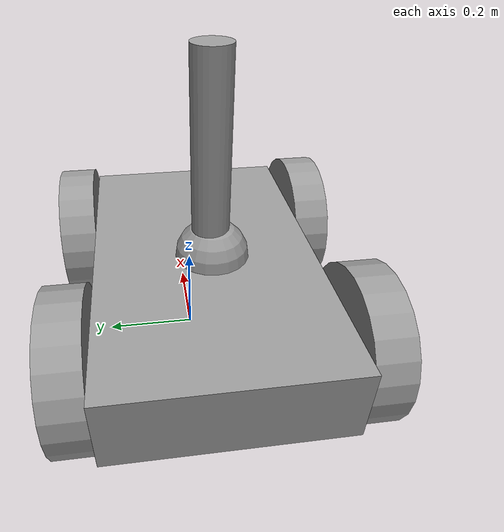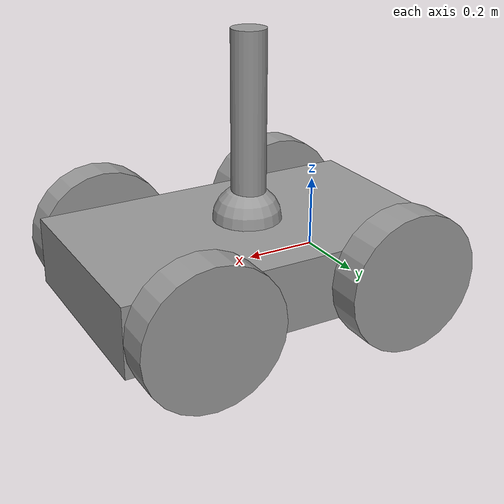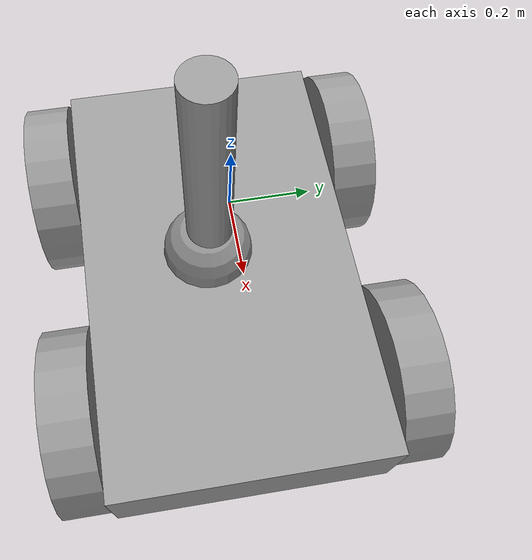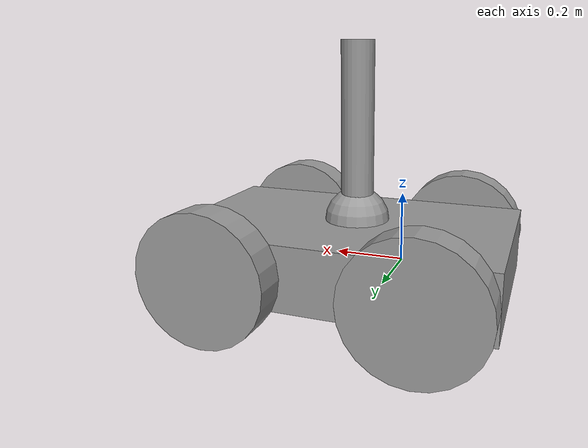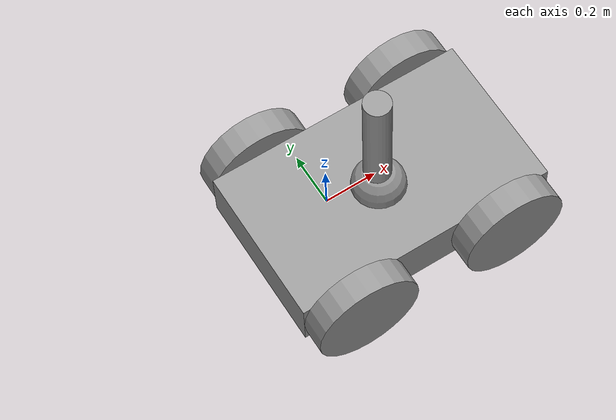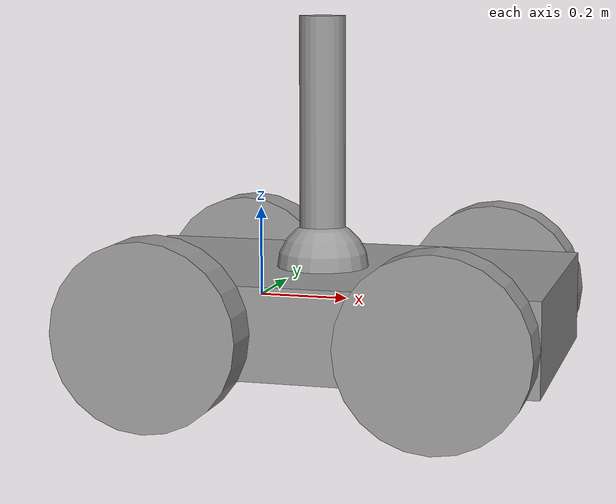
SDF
<?xml version='1.0'?>
<sdf version='1.7'>
  <model name='Robot'>
    <link name='link_0'>
      <inertial>
        <mass>1</mass>
        <inertia>
          <ixx>0.166667</ixx>
          <ixy>0</ixy>
          <ixz>0</ixz>
          <iyy>0.166667</iyy>
          <iyz>0</iyz>
          <izz>0.166667</izz>
        </inertia>
        <pose>0 0 0 0 -0 0</pose>
      </inertial>
      <pose>0.185783 -0.0593 -0.013458 0 -0 0</pose>
      <gravity>1</gravity>
      <self_collide>0</self_collide>
      <kinematic>0</kinematic>
      <enable_wind>0</enable_wind>
      <visual name='visual'>
        <pose>0 0 0 0 -0 0</pose>
        <geometry>
          <box>
            <size>1 0.6 0.2</size>
          </box>
        </geometry>
        <material>
          <lighting>1</lighting>
          <script>
            <uri>file://media/materials/scripts/gazebo.material</uri>
            <name>Gazebo/Grey</name>
          </script>
          <shader type='pixel'>
            <normal_map>__default__</normal_map>
          </shader>
          <ambient>0.3 0.3 0.3 1</ambient>
          <diffuse>0.7 0.7 0.7 1</diffuse>
          <specular>0.01 0.01 0.01 1</specular>
          <emissive>0 0 0 1</emissive>
        </material>
        <transparency>0</transparency>
        <cast_shadows>1</cast_shadows>
      </visual>
      <collision name='collision'>
        <laser_retro>0</laser_retro>
        <max_contacts>10</max_contacts>
        <pose>0 0 0 0 -0 0</pose>
        <geometry>
          <box>
            <size>1 0.6 0.2</size>
          </box>
        </geometry>
        <surface>
          <friction>
            <ode>
              <mu>1</mu>
              <mu2>1</mu2>
              <fdir1>0 0 0</fdir1>
              <slip1>0</slip1>
              <slip2>0</slip2>
            </ode>
            <torsional>
              <coefficient>1</coefficient>
              <patch_radius>0</patch_radius>
              <surface_radius>0</surface_radius>
              <use_patch_radius>1</use_patch_radius>
              <ode>
                <slip>0</slip>
              </ode>
            </torsional>
          </friction>
          <bounce>
            <restitution_coefficient>0</restitution_coefficient>
            <threshold>1e+06</threshold>
          </bounce>
          <contact>
            <collide_without_contact>0</collide_without_contact>
            <collide_without_contact_bitmask>1</collide_without_contact_bitmask>
            <collide_bitmask>1</collide_bitmask>
            <ode>
              <soft_cfm>0</soft_cfm>
              <soft_erp>0.2</soft_erp>
              <kp>1e+13</kp>
              <kd>1</kd>
              <max_vel>0.01</max_vel>
              <min_depth>0</min_depth>
            </ode>
            <bullet>
              <split_impulse>1</split_impulse>
              <split_impulse_penetration_threshold>-0.01</split_impulse_penetration_threshold>
              <soft_cfm>0</soft_cfm>
              <soft_erp>0.2</soft_erp>
              <kp>1e+13</kp>
              <kd>1</kd>
            </bullet>
          </contact>
        </surface>
      </collision>
    </link>
    <link name='link_1'>
      <inertial>
        <mass>1</mass>
        <inertia>
          <ixx>0.145833</ixx>
          <ixy>0</ixy>
          <ixz>0</ixz>
          <iyy>0.145833</iyy>
          <iyz>0</iyz>
          <izz>0.125</izz>
        </inertia>
        <pose>0 0 0 0 -0 0</pose>
      </inertial>
      <pose>-0.114217 -0.40932 -0.013458 1.5707 -0 0</pose>
      <gravity>1</gravity>
      <self_collide>0</self_collide>
      <kinematic>0</kinematic>
      <enable_wind>0</enable_wind>
      <visual name='visual'>
        <pose>0 0 0 0 -0 0</pose>
        <geometry>
          <cylinder>
            <radius>0.2</radius>
            <length>0.1</length>
          </cylinder>
        </geometry>
        <material>
          <lighting>1</lighting>
          <script>
            <uri>file://media/materials/scripts/gazebo.material</uri>
            <name>Gazebo/Grey</name>
          </script>
          <shader type='pixel'>
            <normal_map>__default__</normal_map>
          </shader>
          <ambient>0.3 0.3 0.3 1</ambient>
          <diffuse>0.7 0.7 0.7 1</diffuse>
          <specular>0.01 0.01 0.01 1</specular>
          <emissive>0 0 0 1</emissive>
        </material>
        <transparency>0</transparency>
        <cast_shadows>1</cast_shadows>
      </visual>
      <collision name='collision'>
        <laser_retro>0</laser_retro>
        <max_contacts>10</max_contacts>
        <pose>0 0 0 0 -0 0</pose>
        <geometry>
          <cylinder>
            <radius>0.2</radius>
            <length>0.1</length>
          </cylinder>
        </geometry>
        <surface>
          <friction>
            <ode>
              <mu>1</mu>
              <mu2>1</mu2>
              <fdir1>0 0 0</fdir1>
              <slip1>0</slip1>
              <slip2>0</slip2>
            </ode>
            <torsional>
              <coefficient>1</coefficient>
              <patch_radius>0</patch_radius>
              <surface_radius>0</surface_radius>
              <use_patch_radius>1</use_patch_radius>
              <ode>
                <slip>0</slip>
              </ode>
            </torsional>
          </friction>
          <bounce>
            <restitution_coefficient>0</restitution_coefficient>
            <threshold>1e+06</threshold>
          </bounce>
          <contact>
            <collide_without_contact>0</collide_without_contact>
            <collide_without_contact_bitmask>1</collide_without_contact_bitmask>
            <collide_bitmask>1</collide_bitmask>
            <ode>
              <soft_cfm>0</soft_cfm>
              <soft_erp>0.2</soft_erp>
              <kp>1e+13</kp>
              <kd>1</kd>
              <max_vel>0.01</max_vel>
              <min_depth>0</min_depth>
            </ode>
            <bullet>
              <split_impulse>1</split_impulse>
              <split_impulse_penetration_threshold>-0.01</split_impulse_penetration_threshold>
              <soft_cfm>0</soft_cfm>
              <soft_erp>0.2</soft_erp>
              <kp>1e+13</kp>
              <kd>1</kd>
            </bullet>
          </contact>
        </surface>
      </collision>
    </link>
    <link name='link_1_clone'>
      <inertial>
        <mass>1</mass>
        <inertia>
          <ixx>0.145833</ixx>
          <ixy>0</ixy>
          <ixz>0</ixz>
          <iyy>0.145833</iyy>
          <iyz>0</iyz>
          <izz>0.125</izz>
        </inertia>
        <pose>0 0 0 0 -0 0</pose>
      </inertial>
      <pose>0.485783 -0.40932 -0.013458 1.5707 -0 0</pose>
      <gravity>1</gravity>
      <self_collide>0</self_collide>
      <kinematic>0</kinematic>
      <enable_wind>0</enable_wind>
      <visual name='visual'>
        <pose>0 0 0 0 -0 0</pose>
        <geometry>
          <cylinder>
            <radius>0.2</radius>
            <length>0.1</length>
          </cylinder>
        </geometry>
        <material>
          <lighting>1</lighting>
          <script>
            <uri>file://media/materials/scripts/gazebo.material</uri>
            <name>Gazebo/Grey</name>
          </script>
          <shader type='pixel'>
            <normal_map>__default__</normal_map>
          </shader>
          <ambient>0.3 0.3 0.3 1</ambient>
          <diffuse>0.7 0.7 0.7 1</diffuse>
          <specular>0.01 0.01 0.01 1</specular>
          <emissive>0 0 0 1</emissive>
        </material>
        <transparency>0</transparency>
        <cast_shadows>1</cast_shadows>
      </visual>
      <collision name='collision'>
        <laser_retro>0</laser_retro>
        <max_contacts>10</max_contacts>
        <pose>0 0 0 0 -0 0</pose>
        <geometry>
          <cylinder>
            <radius>0.2</radius>
            <length>0.1</length>
          </cylinder>
        </geometry>
        <surface>
          <friction>
            <ode>
              <mu>1</mu>
              <mu2>1</mu2>
              <fdir1>0 0 0</fdir1>
              <slip1>0</slip1>
              <slip2>0</slip2>
            </ode>
            <torsional>
              <coefficient>1</coefficient>
              <patch_radius>0</patch_radius>
              <surface_radius>0</surface_radius>
              <use_patch_radius>1</use_patch_radius>
              <ode>
                <slip>0</slip>
              </ode>
            </torsional>
          </friction>
          <bounce>
            <restitution_coefficient>0</restitution_coefficient>
            <threshold>1e+06</threshold>
          </bounce>
          <contact>
            <collide_without_contact>0</collide_without_contact>
            <collide_without_contact_bitmask>1</collide_without_contact_bitmask>
            <collide_bitmask>1</collide_bitmask>
            <ode>
              <soft_cfm>0</soft_cfm>
              <soft_erp>0.2</soft_erp>
              <kp>1e+13</kp>
              <kd>1</kd>
              <max_vel>0.01</max_vel>
              <min_depth>0</min_depth>
            </ode>
            <bullet>
              <split_impulse>1</split_impulse>
              <split_impulse_penetration_threshold>-0.01</split_impulse_penetration_threshold>
              <soft_cfm>0</soft_cfm>
              <soft_erp>0.2</soft_erp>
              <kp>1e+13</kp>
              <kd>1</kd>
            </bullet>
          </contact>
        </surface>
      </collision>
    </link>
    <link name='link_1_clone_0'>
      <inertial>
        <mass>1</mass>
        <inertia>
          <ixx>0.145833</ixx>
          <ixy>0</ixy>
          <ixz>0</ixz>
          <iyy>0.145833</iyy>
          <iyz>0</iyz>
          <izz>0.125</izz>
        </inertia>
        <pose>0 0 0 0 -0 0</pose>
      </inertial>
      <pose>-0.114217 0.290719 -0.013458 1.5707 -0 0</pose>
      <gravity>1</gravity>
      <self_collide>0</self_collide>
      <kinematic>0</kinematic>
      <enable_wind>0</enable_wind>
      <visual name='visual'>
        <pose>0 0 0 0 -0 0</pose>
        <geometry>
          <cylinder>
            <radius>0.2</radius>
            <length>0.1</length>
          </cylinder>
        </geometry>
        <material>
          <lighting>1</lighting>
          <script>
            <uri>file://media/materials/scripts/gazebo.material</uri>
            <name>Gazebo/Grey</name>
          </script>
          <shader type='pixel'>
            <normal_map>__default__</normal_map>
          </shader>
          <ambient>0.3 0.3 0.3 1</ambient>
          <diffuse>0.7 0.7 0.7 1</diffuse>
          <specular>0.01 0.01 0.01 1</specular>
          <emissive>0 0 0 1</emissive>
        </material>
        <transparency>0</transparency>
        <cast_shadows>1</cast_shadows>
      </visual>
      <collision name='collision'>
        <laser_retro>0</laser_retro>
        <max_contacts>10</max_contacts>
        <pose>0 0 0 0 -0 0</pose>
        <geometry>
          <cylinder>
            <radius>0.2</radius>
            <length>0.1</length>
          </cylinder>
        </geometry>
        <surface>
          <friction>
            <ode>
              <mu>1</mu>
              <mu2>1</mu2>
              <fdir1>0 0 0</fdir1>
              <slip1>0</slip1>
              <slip2>0</slip2>
            </ode>
            <torsional>
              <coefficient>1</coefficient>
              <patch_radius>0</patch_radius>
              <surface_radius>0</surface_radius>
              <use_patch_radius>1</use_patch_radius>
              <ode>
                <slip>0</slip>
              </ode>
            </torsional>
          </friction>
          <bounce>
            <restitution_coefficient>0</restitution_coefficient>
            <threshold>1e+06</threshold>
          </bounce>
          <contact>
            <collide_without_contact>0</collide_without_contact>
            <collide_without_contact_bitmask>1</collide_without_contact_bitmask>
            <collide_bitmask>1</collide_bitmask>
            <ode>
              <soft_cfm>0</soft_cfm>
              <soft_erp>0.2</soft_erp>
              <kp>1e+13</kp>
              <kd>1</kd>
              <max_vel>0.01</max_vel>
              <min_depth>0</min_depth>
            </ode>
            <bullet>
              <split_impulse>1</split_impulse>
              <split_impulse_penetration_threshold>-0.01</split_impulse_penetration_threshold>
              <soft_cfm>0</soft_cfm>
              <soft_erp>0.2</soft_erp>
              <kp>1e+13</kp>
              <kd>1</kd>
            </bullet>
          </contact>
        </surface>
      </collision>
    </link>
    <link name='link_1_clone_1'>
      <inertial>
        <mass>1</mass>
        <inertia>
          <ixx>0.145833</ixx>
          <ixy>0</ixy>
          <ixz>0</ixz>
          <iyy>0.145833</iyy>
          <iyz>0</iyz>
          <izz>0.125</izz>
        </inertia>
        <pose>0 0 0 0 -0 0</pose>
      </inertial>
      <pose>0.485783 0.290719 -0.013458 1.5707 -0 0</pose>
      <gravity>1</gravity>
      <self_collide>0</self_collide>
      <kinematic>0</kinematic>
      <enable_wind>0</enable_wind>
      <visual name='visual'>
        <pose>0 0 0 0 -0 0</pose>
        <geometry>
          <cylinder>
            <radius>0.2</radius>
            <length>0.1</length>
          </cylinder>
        </geometry>
        <material>
          <lighting>1</lighting>
          <script>
            <uri>file://media/materials/scripts/gazebo.material</uri>
            <name>Gazebo/Grey</name>
          </script>
          <shader type='pixel'>
            <normal_map>__default__</normal_map>
          </shader>
          <ambient>0.3 0.3 0.3 1</ambient>
          <diffuse>0.7 0.7 0.7 1</diffuse>
          <specular>0.01 0.01 0.01 1</specular>
          <emissive>0 0 0 1</emissive>
        </material>
        <transparency>0</transparency>
        <cast_shadows>1</cast_shadows>
      </visual>
      <collision name='collision'>
        <laser_retro>0</laser_retro>
        <max_contacts>10</max_contacts>
        <pose>0 0 0 0 -0 0</pose>
        <geometry>
          <cylinder>
            <radius>0.2</radius>
            <length>0.1</length>
          </cylinder>
        </geometry>
        <surface>
          <friction>
            <ode>
              <mu>1</mu>
              <mu2>1</mu2>
              <fdir1>0 0 0</fdir1>
              <slip1>0</slip1>
              <slip2>0</slip2>
            </ode>
            <torsional>
              <coefficient>1</coefficient>
              <patch_radius>0</patch_radius>
              <surface_radius>0</surface_radius>
              <use_patch_radius>1</use_patch_radius>
              <ode>
                <slip>0</slip>
              </ode>
            </torsional>
          </friction>
          <bounce>
            <restitution_coefficient>0</restitution_coefficient>
            <threshold>1e+06</threshold>
          </bounce>
          <contact>
            <collide_without_contact>0</collide_without_contact>
            <collide_without_contact_bitmask>1</collide_without_contact_bitmask>
            <collide_bitmask>1</collide_bitmask>
            <ode>
              <soft_cfm>0</soft_cfm>
              <soft_erp>0.2</soft_erp>
              <kp>1e+13</kp>
              <kd>1</kd>
              <max_vel>0.01</max_vel>
              <min_depth>0</min_depth>
            </ode>
            <bullet>
              <split_impulse>1</split_impulse>
              <split_impulse_penetration_threshold>-0.01</split_impulse_penetration_threshold>
              <soft_cfm>0</soft_cfm>
              <soft_erp>0.2</soft_erp>
              <kp>1e+13</kp>
              <kd>1</kd>
            </bullet>
          </contact>
        </surface>
      </collision>
    </link>
    <link name='link_2'>
      <inertial>
        <mass>1</mass>
        <inertia>
          <ixx>0.1</ixx>
          <ixy>0</ixy>
          <ixz>0</ixz>
          <iyy>0.1</iyy>
          <iyz>0</iyz>
          <izz>0.1</izz>
        </inertia>
        <pose>0 0 0 0 -0 0</pose>
      </inertial>
      <pose>0.165783 -0.0793 0.086542 0 -0 0</pose>
      <gravity>1</gravity>
      <self_collide>0</self_collide>
      <kinematic>0</kinematic>
      <enable_wind>0</enable_wind>
      <visual name='visual'>
        <pose>0 0 0 0 -0 0</pose>
        <geometry>
          <sphere>
            <radius>0.1</radius>
          </sphere>
        </geometry>
        <material>
          <lighting>1</lighting>
          <script>
            <uri>file://media/materials/scripts/gazebo.material</uri>
            <name>Gazebo/Grey</name>
          </script>
          <shader type='pixel'>
            <normal_map>__default__</normal_map>
          </shader>
          <ambient>0.3 0.3 0.3 1</ambient>
          <diffuse>0.7 0.7 0.7 1</diffuse>
          <specular>0.01 0.01 0.01 1</specular>
          <emissive>0 0 0 1</emissive>
        </material>
        <transparency>0</transparency>
        <cast_shadows>1</cast_shadows>
      </visual>
      <collision name='collision'>
        <laser_retro>0</laser_retro>
        <max_contacts>10</max_contacts>
        <pose>0 0 0 0 -0 0</pose>
        <geometry>
          <sphere>
            <radius>0.1</radius>
          </sphere>
        </geometry>
        <surface>
          <friction>
            <ode>
              <mu>1</mu>
              <mu2>1</mu2>
              <fdir1>0 0 0</fdir1>
              <slip1>0</slip1>
              <slip2>0</slip2>
            </ode>
            <torsional>
              <coefficient>1</coefficient>
              <patch_radius>0</patch_radius>
              <surface_radius>0</surface_radius>
              <use_patch_radius>1</use_patch_radius>
              <ode>
                <slip>0</slip>
              </ode>
            </torsional>
          </friction>
          <bounce>
            <restitution_coefficient>0</restitution_coefficient>
            <threshold>1e+06</threshold>
          </bounce>
          <contact>
            <collide_without_contact>0</collide_without_contact>
            <collide_without_contact_bitmask>1</collide_without_contact_bitmask>
            <collide_bitmask>1</collide_bitmask>
            <ode>
              <soft_cfm>0</soft_cfm>
              <soft_erp>0.2</soft_erp>
              <kp>1e+13</kp>
              <kd>1</kd>
              <max_vel>0.01</max_vel>
              <min_depth>0</min_depth>
            </ode>
            <bullet>
              <split_impulse>1</split_impulse>
              <split_impulse_penetration_threshold>-0.01</split_impulse_penetration_threshold>
              <soft_cfm>0</soft_cfm>
              <soft_erp>0.2</soft_erp>
              <kp>1e+13</kp>
              <kd>1</kd>
            </bullet>
          </contact>
        </surface>
      </collision>
    </link>
    <link name='link_3'>
      <inertial>
        <mass>1</mass>
        <inertia>
          <ixx>0.145833</ixx>
          <ixy>0</ixy>
          <ixz>0</ixz>
          <iyy>0.145833</iyy>
          <iyz>0</iyz>
          <izz>0.125</izz>
        </inertia>
        <pose>0 0 0 0 -0 0</pose>
      </inertial>
      <pose>0.163895 -0.074346 0.380751 0 -0 0</pose>
      <gravity>1</gravity>
      <self_collide>0</self_collide>
      <kinematic>0</kinematic>
      <enable_wind>0</enable_wind>
      <visual name='visual'>
        <pose>0 0 0 0 -0 0</pose>
        <geometry>
          <cylinder>
            <radius>0.05</radius>
            <length>0.5</length>
          </cylinder>
        </geometry>
        <material>
          <lighting>1</lighting>
          <script>
            <uri>file://media/materials/scripts/gazebo.material</uri>
            <name>Gazebo/Grey</name>
          </script>
          <shader type='pixel'>
            <normal_map>__default__</normal_map>
          </shader>
          <ambient>0.3 0.3 0.3 1</ambient>
          <diffuse>0.7 0.7 0.7 1</diffuse>
          <specular>0.01 0.01 0.01 1</specular>
          <emissive>0 0 0 1</emissive>
        </material>
        <transparency>0</transparency>
        <cast_shadows>1</cast_shadows>
      </visual>
      <collision name='collision'>
        <laser_retro>0</laser_retro>
        <max_contacts>10</max_contacts>
        <pose>0 0 0 0 -0 0</pose>
        <geometry>
          <cylinder>
            <radius>0.05</radius>
            <length>0.5</length>
          </cylinder>
        </geometry>
        <surface>
          <friction>
            <ode>
              <mu>1</mu>
              <mu2>1</mu2>
              <fdir1>0 0 0</fdir1>
              <slip1>0</slip1>
              <slip2>0</slip2>
            </ode>
            <torsional>
              <coefficient>1</coefficient>
              <patch_radius>0</patch_radius>
              <surface_radius>0</surface_radius>
              <use_patch_radius>1</use_patch_radius>
              <ode>
                <slip>0</slip>
              </ode>
            </torsional>
          </friction>
          <bounce>
            <restitution_coefficient>0</restitution_coefficient>
            <threshold>1e+06</threshold>
          </bounce>
          <contact>
            <collide_without_contact>0</collide_without_contact>
            <collide_without_contact_bitmask>1</collide_without_contact_bitmask>
            <collide_bitmask>1</collide_bitmask>
            <ode>
              <soft_cfm>0</soft_cfm>
              <soft_erp>0.2</soft_erp>
              <kp>1e+13</kp>
              <kd>1</kd>
              <max_vel>0.01</max_vel>
              <min_depth>0</min_depth>
            </ode>
            <bullet>
              <split_impulse>1</split_impulse>
              <split_impulse_penetration_threshold>-0.01</split_impulse_penetration_threshold>
              <soft_cfm>0</soft_cfm>
              <soft_erp>0.2</soft_erp>
              <kp>1e+13</kp>
              <kd>1</kd>
            </bullet>
          </contact>
        </surface>
      </collision>
    </link>
    <joint name='link_0_JOINT_0' type='revolute'>
      <parent>link_0</parent>
      <child>link_1</child>
      <pose>0 0 0 0 -0 0</pose>
      <axis>
        <xyz>0 0 1</xyz>
        <limit>
          <lower>-1.79769e+308</lower>
          <upper>1.79769e+308</upper>
          <effort>-1</effort>
          <velocity>-1</velocity>
        </limit>
        <dynamics>
          <spring_reference>0</spring_reference>
          <spring_stiffness>0</spring_stiffness>
          <damping>0</damping>
        </dynamics>
      </axis>
      <physics>
        <ode>
          <limit>
            <cfm>0</cfm>
            <erp>0.2</erp>
          </limit>
          <suspension>
            <cfm>0</cfm>
            <erp>0.2</erp>
          </suspension>
        </ode>
      </physics>
    </joint>
    <joint name='link_0_JOINT_1' type='revolute'>
      <parent>link_0</parent>
      <child>link_1_clone</child>
      <pose>0 0 0 0 -0 0</pose>
      <axis>
        <xyz>0 0 1</xyz>
        <limit>
          <lower>-1.79769e+308</lower>
          <upper>1.79769e+308</upper>
          <effort>-1</effort>
          <velocity>-1</velocity>
        </limit>
        <dynamics>
          <spring_reference>0</spring_reference>
          <spring_stiffness>0</spring_stiffness>
          <damping>0</damping>
        </dynamics>
      </axis>
      <physics>
        <ode>
          <limit>
            <cfm>0</cfm>
            <erp>0.2</erp>
          </limit>
          <suspension>
            <cfm>0</cfm>
            <erp>0.2</erp>
          </suspension>
        </ode>
      </physics>
    </joint>
    <joint name='link_0_JOINT_2' type='revolute'>
      <parent>link_0</parent>
      <child>link_1_clone_0</child>
      <pose>0 0 0 0 -0 0</pose>
      <axis>
        <xyz>0 0 1</xyz>
        <limit>
          <lower>-1.79769e+308</lower>
          <upper>1.79769e+308</upper>
          <effort>-1</effort>
          <velocity>-1</velocity>
        </limit>
        <dynamics>
          <spring_reference>0</spring_reference>
          <spring_stiffness>0</spring_stiffness>
          <damping>0</damping>
        </dynamics>
      </axis>
      <physics>
        <ode>
          <limit>
            <cfm>0</cfm>
            <erp>0.2</erp>
          </limit>
          <suspension>
            <cfm>0</cfm>
            <erp>0.2</erp>
          </suspension>
        </ode>
      </physics>
    </joint>
    <joint name='link_0_JOINT_3' type='revolute'>
      <parent>link_0</parent>
      <child>link_1_clone_1</child>
      <pose>0 0 0 0 -0 0</pose>
      <axis>
        <xyz>0 0 1</xyz>
        <limit>
          <lower>-1.79769e+308</lower>
          <upper>1.79769e+308</upper>
          <effort>-1</effort>
          <velocity>-1</velocity>
        </limit>
        <dynamics>
          <spring_reference>0</spring_reference>
          <spring_stiffness>0</spring_stiffness>
          <damping>0</damping>
        </dynamics>
      </axis>
      <physics>
        <ode>
          <limit>
            <cfm>0</cfm>
            <erp>0.2</erp>
          </limit>
          <suspension>
            <cfm>0</cfm>
            <erp>0.2</erp>
          </suspension>
        </ode>
      </physics>
    </joint>
    <joint name='link_0_JOINT_5' type='ball'>
      <parent>link_0</parent>
      <child>link_2</child>
      <pose>0 0 0 0 -0 0</pose>
      <physics>
        <ode>
          <limit>
            <cfm>0</cfm>
            <erp>0.2</erp>
          </limit>
          <suspension>
            <cfm>0</cfm>
            <erp>0.2</erp>
          </suspension>
        </ode>
      </physics>
    </joint>
    <joint name='link_2_JOINT_7' type='fixed'>
      <parent>link_2</parent>
      <child>link_3</child>
      <pose>0 0 0 0 -0 0</pose>
      <physics>
        <ode>
          <limit>
            <cfm>0</cfm>
            <erp>0.2</erp>
          </limit>
          <suspension>
            <cfm>0</cfm>
            <erp>0.2</erp>
          </suspension>
        </ode>
      </physics>
    </joint>
    <static>0</static>
    <allow_auto_disable>1</allow_auto_disable>
  </model>
</sdf>
